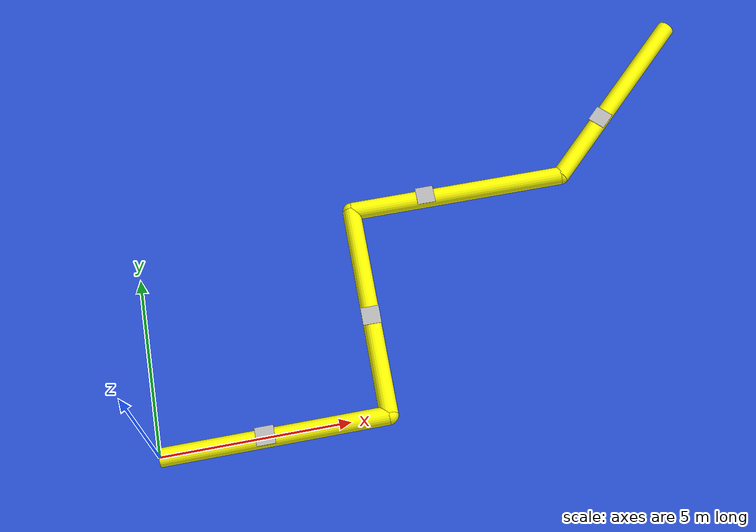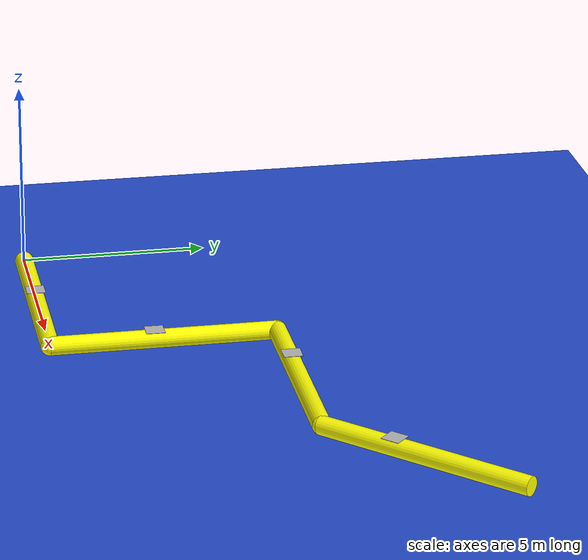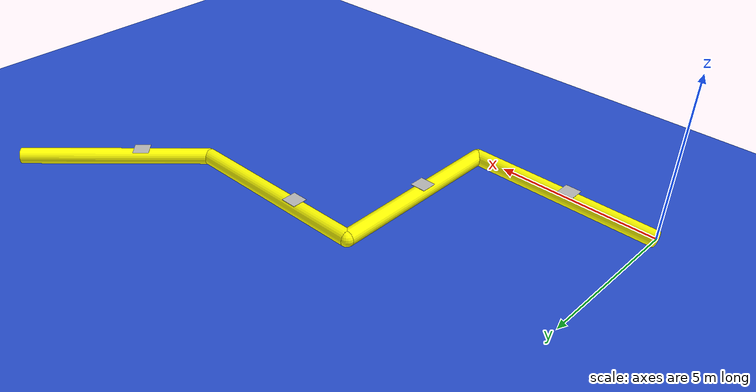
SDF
<?xml version="1.0" ?>
<sdf version="1.5">
  <world name="default">
  <gravity>0 0 0</gravity>

      <include>
        <uri>model://sun</uri>
      </include>

      <include>
        <uri>model://background</uri>
      </include>

      <include>
      <uri>model://yellow_pipe</uri>
      <pose>3 0 0 1.5708 0 1.5708</pose>
      <name>yellow_pipe_1</name>
      </include>

      <include>
      <uri>model://aruco0</uri>
      <pose>3 0 0.25 3.1415 1.5708 0</pose>
      <name>aruco_0</name>
      </include>

      <include>
      <uri>model://corner</uri>
        <pose>6 0 0 0 0 0</pose>
      <name>corner_1</name>
      </include>

      <include>
      <uri>model://yellow_pipe</uri>
        <pose>6 3 0 1.5708 0 0</pose>
      <name>yellow_pipe_2</name>
      </include>

      <include>
      <uri>model://aruco1</uri>
      <pose>6 3 0.25 1.5708 1.5708 0</pose>
      <name>aruco_1</name>
      </include>

      <include>
      <uri>model://corner</uri>
        <pose>6 6 0 0 0 0</pose>
      <name>corner_2</name>
      </include>

      <include>
      <uri>model://yellow_pipe</uri>
        <pose>9 6 0 1.5708 0 1.5708</pose>
      <name>yellow_pipe_3</name>
      </include>

      <include>
      <uri>model://aruco2</uri>
      <pose>8.1 6.25 0.25 1.5708 1.5708 0</pose>
      <name>aruco_2</name>
      </include>

      <include>
      <uri>model://corner</uri>
        <pose>12 6 0 0 0 0</pose>
      <name>corner_3</name>
      </include>

      <include>
      <uri>model://yellow_pipe</uri>
        <pose>14.1 8.09 0 1.5708 0 2.3562</pose>
      <name>yellow_pipe_4</name>
      </include>

      <include>
      <uri>model://aruco4</uri>
      <pose>13.34 7.32 0.25 1.5708 1.5708 2.3562</pose>
      <name>aruco_5</name>
      </include>

        <plugin name="gazebo_ros_state" filename="libgazebo_ros_state.so">
          <ros>
            <namespace>/demo</namespace>
            <argument>model_states:=model_states_demo</argument>
          </ros>
          <update_rate>1.0</update_rate>
        </plugin>

  </world>
</sdf>
5

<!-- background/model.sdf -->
<sdf version="1.5">
    <model name="underwater_background">
      <pose>0 0 -1 0 0 0</pose>
      <link name="background_link">
        <visual name="background_visual">
          <geometry>
            <box>
              <size>100 100 1</size>
            </box>
          </geometry>
          <material>
            <script>
              <name>Gazebo/Blue</name>
              <ambient>0 0 0.2 1</ambient>
              <diffuse>0 0 0.2 1</diffuse>
              <specular>0 0 0.2 1</specular>
              <emissive>0 0 0.2 1</emissive>
              <transparency>0</transparency>
            </script>
          </material>
        </visual>
      </link>
    </model>
</sdf>

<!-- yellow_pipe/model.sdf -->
<sdf version="1.5">
      <model name="yellow_pipe">
        <pose>0 0 0 1.5708 0 0</pose> <!-- x y z roll pitch yaw -->
        <static>true</static>
        <link name="link">
          <!-- Pipe collision definition -->
          <!-- Pipe visual definition -->
          <visual name="visual">
            <geometry>
              <cylinder>
                <radius>0.25</radius>
                <length>6.0</length>
              </cylinder>
            </geometry>
            <material>
              <ambient>1 1 0 1</ambient> <!-- Yellow color -->
              <diffuse>1 1 0 1</diffuse> <!-- Yellow color -->
              <specular>1 1 0 1</specular> <!-- Yellow color -->
            </material>
          </visual>
          <collision name="collision">
           <geometry>
              <cylinder>
                <radius>0.25</radius>
                <length>6.0</length>
              </cylinder>
            </geometry>
         </collision>
        </link>
      </model>
</sdf>

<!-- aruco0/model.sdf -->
<sdf version="1.6">
  <model name="AruCo0">
    <static>true</static>
    <link name="link">
      <visual name="visual">
        <geometry>
          <mesh>
            <uri>model://aruco0/meshes/AruCo0.dae</uri>
          <scale>1.0 1.0 1.0</scale></mesh>
        </geometry>
      </visual>
    </link>
  </model>
</sdf>

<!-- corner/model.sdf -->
<sdf version="1.5">
      <model name="corner">
      <static>true</static> <!-- Set to true if the sphere should not move -->
      <pose>0 0 0 0 0 0</pose> <!-- Position and orientation of the sphere -->
      <link name="link">
        <visual name="visual">
          <geometry>
            <sphere>
              <radius>0.25</radius>
            </sphere>
          </geometry>
          <material>
              <ambient>1 1 0 1</ambient> <!-- Yellow color -->
              <diffuse>1 1 0 1</diffuse> <!-- Yellow color -->
              <specular>1 1 0 1</specular> <!-- Yellow color -->
          </material>
        </visual>
	<collision name="collision">
       	    <geometry>
            <sphere>
              <radius>0.25</radius>
            </sphere>
          </geometry>
	</collision>
        </link>
     </model>
</sdf>

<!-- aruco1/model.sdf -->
<sdf version="1.6">
  <model name="AruCo1">
    <static>true</static>
    <link name="link">
      <visual name="visual">
        <geometry>
          <mesh>
            <uri>model://aruco1/meshes/AruCo1.dae</uri>
          <scale>1.0 1.0 1.0</scale></mesh>
        </geometry>
      </visual>
    </link>
  </model>
</sdf>

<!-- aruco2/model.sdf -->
<sdf version="1.6">
  <model name="AruCo2">
    <static>true</static>
    <link name="link">
      <visual name="visual">
        <geometry>
          <mesh>
            <uri>model://aruco2/meshes/AruCo2.dae</uri>
          <scale>1.0 1.0 1.0</scale></mesh>
        </geometry>
      </visual>
    </link>
  </model>
</sdf>

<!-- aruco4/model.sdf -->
<sdf version="1.6">
  <model name="AruCo4">
    <static>true</static>
    <link name="link">
      <visual name="visual">
        <geometry>
          <mesh>
            <uri>model://aruco4/meshes/AruCo4.dae</uri>
          <scale>1.0 1.0 1.0</scale></mesh>
        </geometry>
      </visual>
    </link>
  </model>
</sdf>
